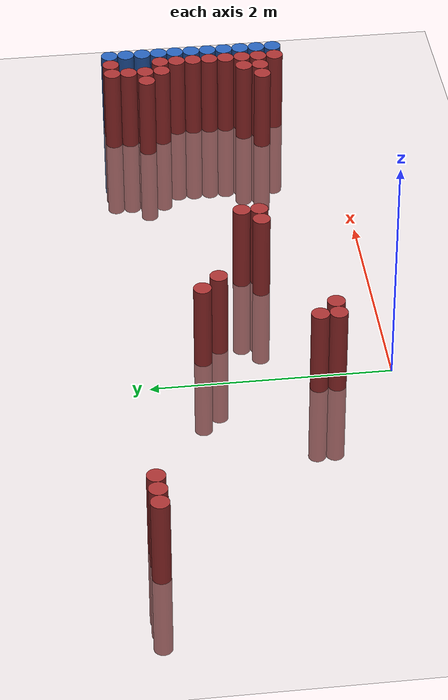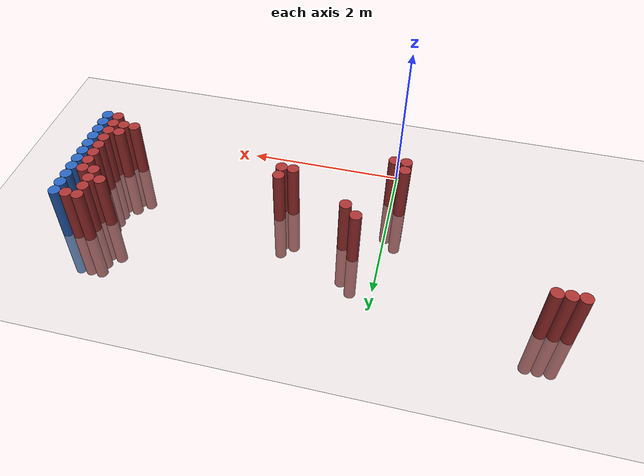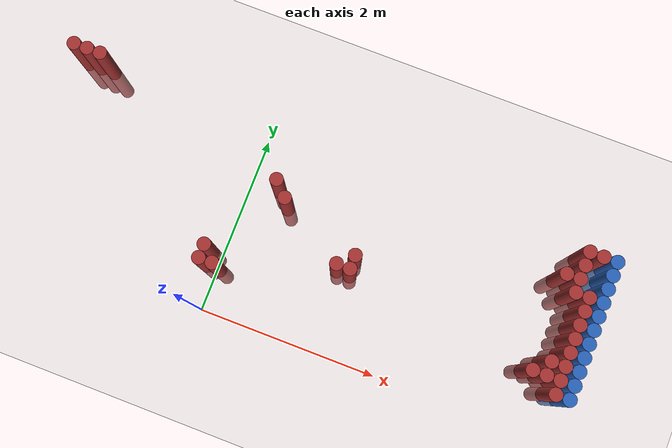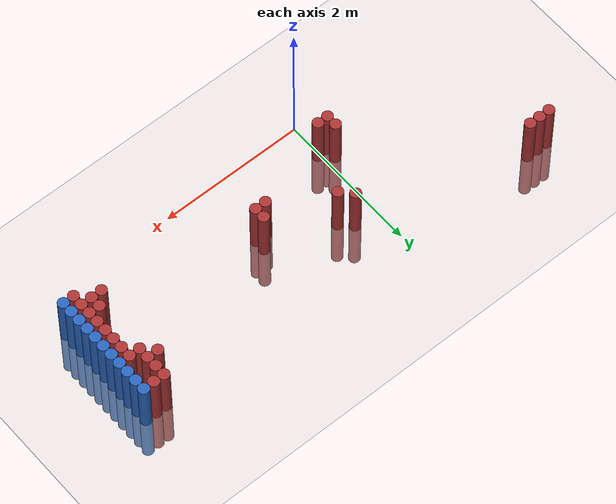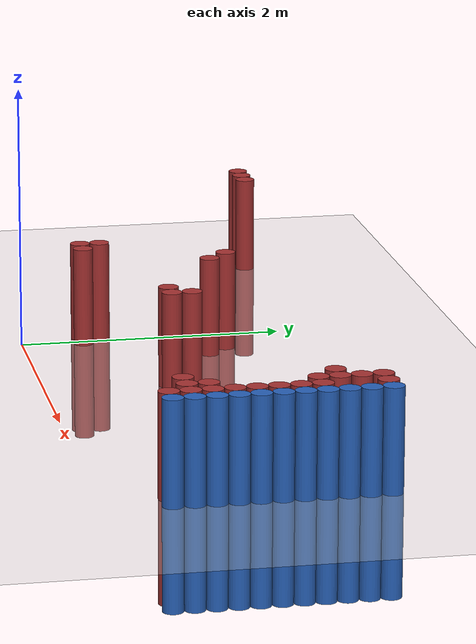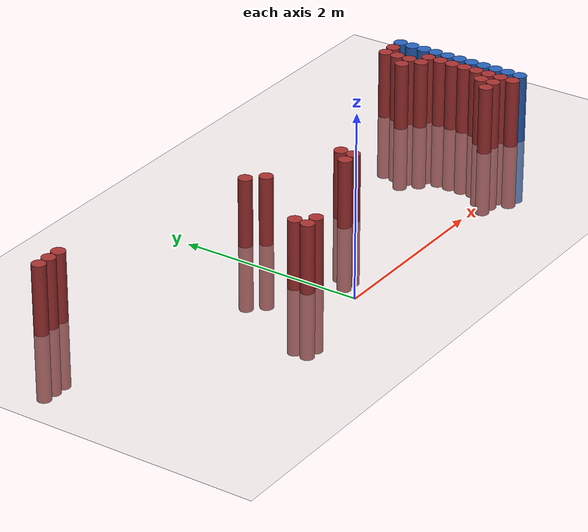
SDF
<sdf version="1.6">
 <world name="default">
  <model name="ground_plane">
   <static>1</static>
   <link name="link">
    <collision name="collision">
     <geometry><plane><normal>0 0 1</normal><size>100 100</size></plane></geometry>
     <surface><friction><ode><mu>100</mu><mu2>50</mu2></ode></friction></surface>
    </collision>
    <visual name="visual">
     <cast_shadows>0</cast_shadows>
     <geometry><plane><normal>0 0 1</normal><size>100 100</size></plane></geometry>
     <material>
      <script><uri>file://media/materials/scripts/gazebo.material</uri><name>Gazebo/Grey</name></script>
     </material>
    </visual>
   </link>
  </model>
  <model name="unit_cylinder_120">
   <static>1</static>
   <pose>3.925000 0.475000 0.000000 0.000000 0.000000 0.000000</pose>
   <link name="link">
    <inertial>
     <mass>1</mass>
     <inertia><ixx>0.145833</ixx><ixy>0</ixy><ixz>0</ixz><iyy>0.145833</iyy><iyz>0</iyz><izz>0.125</izz></inertia>
    </inertial>
    <collision name="collision">
     <geometry><cylinder><radius>0.075000</radius><length>1.5</length></cylinder></geometry>
    </collision>
    <visual name="visual">
     <geometry><cylinder><radius>0.075000</radius><length>1.5</length></cylinder></geometry>
     <material>
      <ambient>0.152000 0.379000 0.720000 1</ambient>
      <diffuse>0.152000 0.379000 0.720000 1</diffuse>
     </material>
     <material>
      <script><name>Gazebo/Grey</name><uri>file://media/materials/scripts/gazebo.material</uri></script>
     </material>
    </visual>
   </link>
  </model>
  <model name="unit_cylinder_122">
   <static>1</static>
   <pose>3.925000 0.625000 0.000000 0.000000 0.000000 0.000000</pose>
   <link name="link">
    <inertial>
     <mass>1</mass>
     <inertia><ixx>0.145833</ixx><ixy>0</ixy><ixz>0</ixz><iyy>0.145833</iyy><iyz>0</iyz><izz>0.125</izz></inertia>
    </inertial>
    <collision name="collision">
     <geometry><cylinder><radius>0.075000</radius><length>1.5</length></cylinder></geometry>
    </collision>
    <visual name="visual">
     <geometry><cylinder><radius>0.075000</radius><length>1.5</length></cylinder></geometry>
     <material>
      <ambient>0.152000 0.379000 0.720000 1</ambient>
      <diffuse>0.152000 0.379000 0.720000 1</diffuse>
     </material>
     <material>
      <script><name>Gazebo/Grey</name><uri>file://media/materials/scripts/gazebo.material</uri></script>
     </material>
    </visual>
   </link>
  </model>
  <model name="unit_cylinder_124">
   <static>1</static>
   <pose>3.925000 0.775000 0.000000 0.000000 0.000000 0.000000</pose>
   <link name="link">
    <inertial>
     <mass>1</mass>
     <inertia><ixx>0.145833</ixx><ixy>0</ixy><ixz>0</ixz><iyy>0.145833</iyy><iyz>0</iyz><izz>0.125</izz></inertia>
    </inertial>
    <collision name="collision">
     <geometry><cylinder><radius>0.075000</radius><length>1.5</length></cylinder></geometry>
    </collision>
    <visual name="visual">
     <geometry><cylinder><radius>0.075000</radius><length>1.5</length></cylinder></geometry>
     <material>
      <ambient>0.152000 0.379000 0.720000 1</ambient>
      <diffuse>0.152000 0.379000 0.720000 1</diffuse>
     </material>
     <material>
      <script><name>Gazebo/Grey</name><uri>file://media/materials/scripts/gazebo.material</uri></script>
     </material>
    </visual>
   </link>
  </model>
  <model name="unit_cylinder_126">
   <static>1</static>
   <pose>3.925000 0.925000 0.000000 0.000000 0.000000 0.000000</pose>
   <link name="link">
    <inertial>
     <mass>1</mass>
     <inertia><ixx>0.145833</ixx><ixy>0</ixy><ixz>0</ixz><iyy>0.145833</iyy><iyz>0</iyz><izz>0.125</izz></inertia>
    </inertial>
    <collision name="collision">
     <geometry><cylinder><radius>0.075000</radius><length>1.5</length></cylinder></geometry>
    </collision>
    <visual name="visual">
     <geometry><cylinder><radius>0.075000</radius><length>1.5</length></cylinder></geometry>
     <material>
      <ambient>0.152000 0.379000 0.720000 1</ambient>
      <diffuse>0.152000 0.379000 0.720000 1</diffuse>
     </material>
     <material>
      <script><name>Gazebo/Grey</name><uri>file://media/materials/scripts/gazebo.material</uri></script>
     </material>
    </visual>
   </link>
  </model>
  <model name="unit_cylinder_128">
   <static>1</static>
   <pose>3.925000 1.075000 0.000000 0.000000 0.000000 0.000000</pose>
   <link name="link">
    <inertial>
     <mass>1</mass>
     <inertia><ixx>0.145833</ixx><ixy>0</ixy><ixz>0</ixz><iyy>0.145833</iyy><iyz>0</iyz><izz>0.125</izz></inertia>
    </inertial>
    <collision name="collision">
     <geometry><cylinder><radius>0.075000</radius><length>1.5</length></cylinder></geometry>
    </collision>
    <visual name="visual">
     <geometry><cylinder><radius>0.075000</radius><length>1.5</length></cylinder></geometry>
     <material>
      <ambient>0.152000 0.379000 0.720000 1</ambient>
      <diffuse>0.152000 0.379000 0.720000 1</diffuse>
     </material>
     <material>
      <script><name>Gazebo/Grey</name><uri>file://media/materials/scripts/gazebo.material</uri></script>
     </material>
    </visual>
   </link>
  </model>
  <model name="unit_cylinder_130">
   <static>1</static>
   <pose>3.925000 1.225000 0.000000 0.000000 0.000000 0.000000</pose>
   <link name="link">
    <inertial>
     <mass>1</mass>
     <inertia><ixx>0.145833</ixx><ixy>0</ixy><ixz>0</ixz><iyy>0.145833</iyy><iyz>0</iyz><izz>0.125</izz></inertia>
    </inertial>
    <collision name="collision">
     <geometry><cylinder><radius>0.075000</radius><length>1.5</length></cylinder></geometry>
    </collision>
    <visual name="visual">
     <geometry><cylinder><radius>0.075000</radius><length>1.5</length></cylinder></geometry>
     <material>
      <ambient>0.152000 0.379000 0.720000 1</ambient>
      <diffuse>0.152000 0.379000 0.720000 1</diffuse>
     </material>
     <material>
      <script><name>Gazebo/Grey</name><uri>file://media/materials/scripts/gazebo.material</uri></script>
     </material>
    </visual>
   </link>
  </model>
  <model name="unit_cylinder_132">
   <static>1</static>
   <pose>3.925000 1.375000 0.000000 0.000000 0.000000 0.000000</pose>
   <link name="link">
    <inertial>
     <mass>1</mass>
     <inertia><ixx>0.145833</ixx><ixy>0</ixy><ixz>0</ixz><iyy>0.145833</iyy><iyz>0</iyz><izz>0.125</izz></inertia>
    </inertial>
    <collision name="collision">
     <geometry><cylinder><radius>0.075000</radius><length>1.5</length></cylinder></geometry>
    </collision>
    <visual name="visual">
     <geometry><cylinder><radius>0.075000</radius><length>1.5</length></cylinder></geometry>
     <material>
      <ambient>0.152000 0.379000 0.720000 1</ambient>
      <diffuse>0.152000 0.379000 0.720000 1</diffuse>
     </material>
     <material>
      <script><name>Gazebo/Grey</name><uri>file://media/materials/scripts/gazebo.material</uri></script>
     </material>
    </visual>
   </link>
  </model>
  <model name="unit_cylinder_134">
   <static>1</static>
   <pose>3.925000 1.525000 0.000000 0.000000 0.000000 0.000000</pose>
   <link name="link">
    <inertial>
     <mass>1</mass>
     <inertia><ixx>0.145833</ixx><ixy>0</ixy><ixz>0</ixz><iyy>0.145833</iyy><iyz>0</iyz><izz>0.125</izz></inertia>
    </inertial>
    <collision name="collision">
     <geometry><cylinder><radius>0.075000</radius><length>1.5</length></cylinder></geometry>
    </collision>
    <visual name="visual">
     <geometry><cylinder><radius>0.075000</radius><length>1.5</length></cylinder></geometry>
     <material>
      <ambient>0.152000 0.379000 0.720000 1</ambient>
      <diffuse>0.152000 0.379000 0.720000 1</diffuse>
     </material>
     <material>
      <script><name>Gazebo/Grey</name><uri>file://media/materials/scripts/gazebo.material</uri></script>
     </material>
    </visual>
   </link>
  </model>
  <model name="unit_cylinder_136">
   <static>1</static>
   <pose>3.925000 1.675000 0.000000 0.000000 0.000000 0.000000</pose>
   <link name="link">
    <inertial>
     <mass>1</mass>
     <inertia><ixx>0.145833</ixx><ixy>0</ixy><ixz>0</ixz><iyy>0.145833</iyy><iyz>0</iyz><izz>0.125</izz></inertia>
    </inertial>
    <collision name="collision">
     <geometry><cylinder><radius>0.075000</radius><length>1.5</length></cylinder></geometry>
    </collision>
    <visual name="visual">
     <geometry><cylinder><radius>0.075000</radius><length>1.5</length></cylinder></geometry>
     <material>
      <ambient>0.152000 0.379000 0.720000 1</ambient>
      <diffuse>0.152000 0.379000 0.720000 1</diffuse>
     </material>
     <material>
      <script><name>Gazebo/Grey</name><uri>file://media/materials/scripts/gazebo.material</uri></script>
     </material>
    </visual>
   </link>
  </model>
  <model name="unit_cylinder_138">
   <static>1</static>
   <pose>3.925000 1.825000 0.000000 0.000000 0.000000 0.000000</pose>
   <link name="link">
    <inertial>
     <mass>1</mass>
     <inertia><ixx>0.145833</ixx><ixy>0</ixy><ixz>0</ixz><iyy>0.145833</iyy><iyz>0</iyz><izz>0.125</izz></inertia>
    </inertial>
    <collision name="collision">
     <geometry><cylinder><radius>0.075000</radius><length>1.5</length></cylinder></geometry>
    </collision>
    <visual name="visual">
     <geometry><cylinder><radius>0.075000</radius><length>1.5</length></cylinder></geometry>
     <material>
      <ambient>0.152000 0.379000 0.720000 1</ambient>
      <diffuse>0.152000 0.379000 0.720000 1</diffuse>
     </material>
     <material>
      <script><name>Gazebo/Grey</name><uri>file://media/materials/scripts/gazebo.material</uri></script>
     </material>
    </visual>
   </link>
  </model>
  <model name="unit_cylinder_140">
   <static>1</static>
   <pose>3.925000 1.975000 0.000000 0.000000 0.000000 0.000000</pose>
   <link name="link">
    <inertial>
     <mass>1</mass>
     <inertia><ixx>0.145833</ixx><ixy>0</ixy><ixz>0</ixz><iyy>0.145833</iyy><iyz>0</iyz><izz>0.125</izz></inertia>
    </inertial>
    <collision name="collision">
     <geometry><cylinder><radius>0.075000</radius><length>1.5</length></cylinder></geometry>
    </collision>
    <visual name="visual">
     <geometry><cylinder><radius>0.075000</radius><length>1.5</length></cylinder></geometry>
     <material>
      <ambient>0.152000 0.379000 0.720000 1</ambient>
      <diffuse>0.152000 0.379000 0.720000 1</diffuse>
     </material>
     <material>
      <script><name>Gazebo/Grey</name><uri>file://media/materials/scripts/gazebo.material</uri></script>
     </material>
    </visual>
   </link>
  </model>
  <model name="unit_cylinder_290">
   <static>1</static>
   <pose>-2.225000 2.125000 0.000000 0.000000 0.000000 0.000000</pose>
   <link name="link">
    <inertial>
     <mass>1</mass>
     <inertia><ixx>0.145833</ixx><ixy>0</ixy><ixz>0</ixz><iyy>0.145833</iyy><iyz>0</iyz><izz>0.125</izz></inertia>
    </inertial>
    <collision name="collision">
     <geometry><cylinder><radius>0.075000</radius><length>1.5</length></cylinder></geometry>
    </collision>
    <visual name="visual">
     <geometry><cylinder><radius>0.075000</radius><length>1.5</length></cylinder></geometry>
     <material>
      <ambient>0.648000 0.192000 0.192000 1</ambient>
      <diffuse>0.648000 0.192000 0.192000 1</diffuse>
     </material>
     <material>
      <script><name>Gazebo/Grey</name><uri>file://media/materials/scripts/gazebo.material</uri></script>
     </material>
    </visual>
   </link>
  </model>
  <model name="unit_cylinder_293">
   <static>1</static>
   <pose>-2.075000 2.125000 0.000000 0.000000 0.000000 0.000000</pose>
   <link name="link">
    <inertial>
     <mass>1</mass>
     <inertia><ixx>0.145833</ixx><ixy>0</ixy><ixz>0</ixz><iyy>0.145833</iyy><iyz>0</iyz><izz>0.125</izz></inertia>
    </inertial>
    <collision name="collision">
     <geometry><cylinder><radius>0.075000</radius><length>1.5</length></cylinder></geometry>
    </collision>
    <visual name="visual">
     <geometry><cylinder><radius>0.075000</radius><length>1.5</length></cylinder></geometry>
     <material>
      <ambient>0.648000 0.192000 0.192000 1</ambient>
      <diffuse>0.648000 0.192000 0.192000 1</diffuse>
     </material>
     <material>
      <script><name>Gazebo/Grey</name><uri>file://media/materials/scripts/gazebo.material</uri></script>
     </material>
    </visual>
   </link>
  </model>
  <model name="unit_cylinder_297">
   <static>1</static>
   <pose>-1.925000 2.125000 0.000000 0.000000 0.000000 0.000000</pose>
   <link name="link">
    <inertial>
     <mass>1</mass>
     <inertia><ixx>0.145833</ixx><ixy>0</ixy><ixz>0</ixz><iyy>0.145833</iyy><iyz>0</iyz><izz>0.125</izz></inertia>
    </inertial>
    <collision name="collision">
     <geometry><cylinder><radius>0.075000</radius><length>1.5</length></cylinder></geometry>
    </collision>
    <visual name="visual">
     <geometry><cylinder><radius>0.075000</radius><length>1.5</length></cylinder></geometry>
     <material>
      <ambient>0.648000 0.192000 0.192000 1</ambient>
      <diffuse>0.648000 0.192000 0.192000 1</diffuse>
     </material>
     <material>
      <script><name>Gazebo/Grey</name><uri>file://media/materials/scripts/gazebo.material</uri></script>
     </material>
    </visual>
   </link>
  </model>
  <model name="unit_cylinder_324">
   <static>1</static>
   <pose>-0.125000 0.475000 0.000000 0.000000 0.000000 0.000000</pose>
   <link name="link">
    <inertial>
     <mass>1</mass>
     <inertia><ixx>0.145833</ixx><ixy>0</ixy><ixz>0</ixz><iyy>0.145833</iyy><iyz>0</iyz><izz>0.125</izz></inertia>
    </inertial>
    <collision name="collision">
     <geometry><cylinder><radius>0.075000</radius><length>1.5</length></cylinder></geometry>
    </collision>
    <visual name="visual">
     <geometry><cylinder><radius>0.075000</radius><length>1.5</length></cylinder></geometry>
     <material>
      <ambient>0.648000 0.192000 0.192000 1</ambient>
      <diffuse>0.648000 0.192000 0.192000 1</diffuse>
     </material>
     <material>
      <script><name>Gazebo/Grey</name><uri>file://media/materials/scripts/gazebo.material</uri></script>
     </material>
    </visual>
   </link>
  </model>
  <model name="unit_cylinder_325">
   <static>1</static>
   <pose>-0.125000 0.625000 0.000000 0.000000 0.000000 0.000000</pose>
   <link name="link">
    <inertial>
     <mass>1</mass>
     <inertia><ixx>0.145833</ixx><ixy>0</ixy><ixz>0</ixz><iyy>0.145833</iyy><iyz>0</iyz><izz>0.125</izz></inertia>
    </inertial>
    <collision name="collision">
     <geometry><cylinder><radius>0.075000</radius><length>1.5</length></cylinder></geometry>
    </collision>
    <visual name="visual">
     <geometry><cylinder><radius>0.075000</radius><length>1.5</length></cylinder></geometry>
     <material>
      <ambient>0.648000 0.192000 0.192000 1</ambient>
      <diffuse>0.648000 0.192000 0.192000 1</diffuse>
     </material>
     <material>
      <script><name>Gazebo/Grey</name><uri>file://media/materials/scripts/gazebo.material</uri></script>
     </material>
    </visual>
   </link>
  </model>
  <model name="unit_cylinder_329">
   <static>1</static>
   <pose>0.025000 0.475000 0.000000 0.000000 0.000000 0.000000</pose>
   <link name="link">
    <inertial>
     <mass>1</mass>
     <inertia><ixx>0.145833</ixx><ixy>0</ixy><ixz>0</ixz><iyy>0.145833</iyy><iyz>0</iyz><izz>0.125</izz></inertia>
    </inertial>
    <collision name="collision">
     <geometry><cylinder><radius>0.075000</radius><length>1.5</length></cylinder></geometry>
    </collision>
    <visual name="visual">
     <geometry><cylinder><radius>0.075000</radius><length>1.5</length></cylinder></geometry>
     <material>
      <ambient>0.648000 0.192000 0.192000 1</ambient>
      <diffuse>0.648000 0.192000 0.192000 1</diffuse>
     </material>
     <material>
      <script><name>Gazebo/Grey</name><uri>file://media/materials/scripts/gazebo.material</uri></script>
     </material>
    </visual>
   </link>
  </model>
  <model name="unit_cylinder_336">
   <static>1</static>
   <pose>0.325000 1.525000 0.000000 0.000000 0.000000 0.000000</pose>
   <link name="link">
    <inertial>
     <mass>1</mass>
     <inertia><ixx>0.145833</ixx><ixy>0</ixy><ixz>0</ixz><iyy>0.145833</iyy><iyz>0</iyz><izz>0.125</izz></inertia>
    </inertial>
    <collision name="collision">
     <geometry><cylinder><radius>0.075000</radius><length>1.5</length></cylinder></geometry>
    </collision>
    <visual name="visual">
     <geometry><cylinder><radius>0.075000</radius><length>1.5</length></cylinder></geometry>
     <material>
      <ambient>0.648000 0.192000 0.192000 1</ambient>
      <diffuse>0.648000 0.192000 0.192000 1</diffuse>
     </material>
     <material>
      <script><name>Gazebo/Grey</name><uri>file://media/materials/scripts/gazebo.material</uri></script>
     </material>
    </visual>
   </link>
  </model>
  <model name="unit_cylinder_340">
   <static>1</static>
   <pose>0.475000 1.375000 0.000000 0.000000 0.000000 0.000000</pose>
   <link name="link">
    <inertial>
     <mass>1</mass>
     <inertia><ixx>0.145833</ixx><ixy>0</ixy><ixz>0</ixz><iyy>0.145833</iyy><iyz>0</iyz><izz>0.125</izz></inertia>
    </inertial>
    <collision name="collision">
     <geometry><cylinder><radius>0.075000</radius><length>1.5</length></cylinder></geometry>
    </collision>
    <visual name="visual">
     <geometry><cylinder><radius>0.075000</radius><length>1.5</length></cylinder></geometry>
     <material>
      <ambient>0.648000 0.192000 0.192000 1</ambient>
      <diffuse>0.648000 0.192000 0.192000 1</diffuse>
     </material>
     <material>
      <script><name>Gazebo/Grey</name><uri>file://media/materials/scripts/gazebo.material</uri></script>
     </material>
    </visual>
   </link>
  </model>
  <model name="unit_cylinder_346">
   <static>1</static>
   <pose>1.225000 0.925000 0.000000 0.000000 0.000000 0.000000</pose>
   <link name="link">
    <inertial>
     <mass>1</mass>
     <inertia><ixx>0.145833</ixx><ixy>0</ixy><ixz>0</ixz><iyy>0.145833</iyy><iyz>0</iyz><izz>0.125</izz></inertia>
    </inertial>
    <collision name="collision">
     <geometry><cylinder><radius>0.075000</radius><length>1.5</length></cylinder></geometry>
    </collision>
    <visual name="visual">
     <geometry><cylinder><radius>0.075000</radius><length>1.5</length></cylinder></geometry>
     <material>
      <ambient>0.648000 0.192000 0.192000 1</ambient>
      <diffuse>0.648000 0.192000 0.192000 1</diffuse>
     </material>
     <material>
      <script><name>Gazebo/Grey</name><uri>file://media/materials/scripts/gazebo.material</uri></script>
     </material>
    </visual>
   </link>
  </model>
  <model name="unit_cylinder_347">
   <static>1</static>
   <pose>1.375000 0.925000 0.000000 0.000000 0.000000 0.000000</pose>
   <link name="link">
    <inertial>
     <mass>1</mass>
     <inertia><ixx>0.145833</ixx><ixy>0</ixy><ixz>0</ixz><iyy>0.145833</iyy><iyz>0</iyz><izz>0.125</izz></inertia>
    </inertial>
    <collision name="collision">
     <geometry><cylinder><radius>0.075000</radius><length>1.5</length></cylinder></geometry>
    </collision>
    <visual name="visual">
     <geometry><cylinder><radius>0.075000</radius><length>1.5</length></cylinder></geometry>
     <material>
      <ambient>0.648000 0.192000 0.192000 1</ambient>
      <diffuse>0.648000 0.192000 0.192000 1</diffuse>
     </material>
     <material>
      <script><name>Gazebo/Grey</name><uri>file://media/materials/scripts/gazebo.material</uri></script>
     </material>
    </visual>
   </link>
  </model>
  <model name="unit_cylinder_348">
   <static>1</static>
   <pose>1.375000 1.075000 0.000000 0.000000 0.000000 0.000000</pose>
   <link name="link">
    <inertial>
     <mass>1</mass>
     <inertia><ixx>0.145833</ixx><ixy>0</ixy><ixz>0</ixz><iyy>0.145833</iyy><iyz>0</iyz><izz>0.125</izz></inertia>
    </inertial>
    <collision name="collision">
     <geometry><cylinder><radius>0.075000</radius><length>1.5</length></cylinder></geometry>
    </collision>
    <visual name="visual">
     <geometry><cylinder><radius>0.075000</radius><length>1.5</length></cylinder></geometry>
     <material>
      <ambient>0.648000 0.192000 0.192000 1</ambient>
      <diffuse>0.648000 0.192000 0.192000 1</diffuse>
     </material>
     <material>
      <script><name>Gazebo/Grey</name><uri>file://media/materials/scripts/gazebo.material</uri></script>
     </material>
    </visual>
   </link>
  </model>
  <model name="unit_cylinder_366">
   <static>1</static>
   <pose>3.475000 0.625000 0.000000 0.000000 0.000000 0.000000</pose>
   <link name="link">
    <inertial>
     <mass>1</mass>
     <inertia><ixx>0.145833</ixx><ixy>0</ixy><ixz>0</ixz><iyy>0.145833</iyy><iyz>0</iyz><izz>0.125</izz></inertia>
    </inertial>
    <collision name="collision">
     <geometry><cylinder><radius>0.075000</radius><length>1.5</length></cylinder></geometry>
    </collision>
    <visual name="visual">
     <geometry><cylinder><radius>0.075000</radius><length>1.5</length></cylinder></geometry>
     <material>
      <ambient>0.648000 0.192000 0.192000 1</ambient>
      <diffuse>0.648000 0.192000 0.192000 1</diffuse>
     </material>
     <material>
      <script><name>Gazebo/Grey</name><uri>file://media/materials/scripts/gazebo.material</uri></script>
     </material>
    </visual>
   </link>
  </model>
  <model name="unit_cylinder_367">
   <static>1</static>
   <pose>3.475000 1.675000 0.000000 0.000000 0.000000 0.000000</pose>
   <link name="link">
    <inertial>
     <mass>1</mass>
     <inertia><ixx>0.145833</ixx><ixy>0</ixy><ixz>0</ixz><iyy>0.145833</iyy><iyz>0</iyz><izz>0.125</izz></inertia>
    </inertial>
    <collision name="collision">
     <geometry><cylinder><radius>0.075000</radius><length>1.5</length></cylinder></geometry>
    </collision>
    <visual name="visual">
     <geometry><cylinder><radius>0.075000</radius><length>1.5</length></cylinder></geometry>
     <material>
      <ambient>0.648000 0.192000 0.192000 1</ambient>
      <diffuse>0.648000 0.192000 0.192000 1</diffuse>
     </material>
     <material>
      <script><name>Gazebo/Grey</name><uri>file://media/materials/scripts/gazebo.material</uri></script>
     </material>
    </visual>
   </link>
  </model>
  <model name="unit_cylinder_368">
   <static>1</static>
   <pose>3.625000 0.625000 0.000000 0.000000 0.000000 0.000000</pose>
   <link name="link">
    <inertial>
     <mass>1</mass>
     <inertia><ixx>0.145833</ixx><ixy>0</ixy><ixz>0</ixz><iyy>0.145833</iyy><iyz>0</iyz><izz>0.125</izz></inertia>
    </inertial>
    <collision name="collision">
     <geometry><cylinder><radius>0.075000</radius><length>1.5</length></cylinder></geometry>
    </collision>
    <visual name="visual">
     <geometry><cylinder><radius>0.075000</radius><length>1.5</length></cylinder></geometry>
     <material>
      <ambient>0.648000 0.192000 0.192000 1</ambient>
      <diffuse>0.648000 0.192000 0.192000 1</diffuse>
     </material>
     <material>
      <script><name>Gazebo/Grey</name><uri>file://media/materials/scripts/gazebo.material</uri></script>
     </material>
    </visual>
   </link>
  </model>
  <model name="unit_cylinder_369">
   <static>1</static>
   <pose>3.625000 0.775000 0.000000 0.000000 0.000000 0.000000</pose>
   <link name="link">
    <inertial>
     <mass>1</mass>
     <inertia><ixx>0.145833</ixx><ixy>0</ixy><ixz>0</ixz><iyy>0.145833</iyy><iyz>0</iyz><izz>0.125</izz></inertia>
    </inertial>
    <collision name="collision">
     <geometry><cylinder><radius>0.075000</radius><length>1.5</length></cylinder></geometry>
    </collision>
    <visual name="visual">
     <geometry><cylinder><radius>0.075000</radius><length>1.5</length></cylinder></geometry>
     <material>
      <ambient>0.648000 0.192000 0.192000 1</ambient>
      <diffuse>0.648000 0.192000 0.192000 1</diffuse>
     </material>
     <material>
      <script><name>Gazebo/Grey</name><uri>file://media/materials/scripts/gazebo.material</uri></script>
     </material>
    </visual>
   </link>
  </model>
  <model name="unit_cylinder_370">
   <static>1</static>
   <pose>3.625000 1.525000 0.000000 0.000000 0.000000 0.000000</pose>
   <link name="link">
    <inertial>
     <mass>1</mass>
     <inertia><ixx>0.145833</ixx><ixy>0</ixy><ixz>0</ixz><iyy>0.145833</iyy><iyz>0</iyz><izz>0.125</izz></inertia>
    </inertial>
    <collision name="collision">
     <geometry><cylinder><radius>0.075000</radius><length>1.5</length></cylinder></geometry>
    </collision>
    <visual name="visual">
     <geometry><cylinder><radius>0.075000</radius><length>1.5</length></cylinder></geometry>
     <material>
      <ambient>0.648000 0.192000 0.192000 1</ambient>
      <diffuse>0.648000 0.192000 0.192000 1</diffuse>
     </material>
     <material>
      <script><name>Gazebo/Grey</name><uri>file://media/materials/scripts/gazebo.material</uri></script>
     </material>
    </visual>
   </link>
  </model>
  <model name="unit_cylinder_371">
   <static>1</static>
   <pose>3.625000 1.675000 0.000000 0.000000 0.000000 0.000000</pose>
   <link name="link">
    <inertial>
     <mass>1</mass>
     <inertia><ixx>0.145833</ixx><ixy>0</ixy><ixz>0</ixz><iyy>0.145833</iyy><iyz>0</iyz><izz>0.125</izz></inertia>
    </inertial>
    <collision name="collision">
     <geometry><cylinder><radius>0.075000</radius><length>1.5</length></cylinder></geometry>
    </collision>
    <visual name="visual">
     <geometry><cylinder><radius>0.075000</radius><length>1.5</length></cylinder></geometry>
     <material>
      <ambient>0.648000 0.192000 0.192000 1</ambient>
      <diffuse>0.648000 0.192000 0.192000 1</diffuse>
     </material>
     <material>
      <script><name>Gazebo/Grey</name><uri>file://media/materials/scripts/gazebo.material</uri></script>
     </material>
    </visual>
   </link>
  </model>
  <model name="unit_cylinder_372">
   <static>1</static>
   <pose>3.625000 1.825000 0.000000 0.000000 0.000000 0.000000</pose>
   <link name="link">
    <inertial>
     <mass>1</mass>
     <inertia><ixx>0.145833</ixx><ixy>0</ixy><ixz>0</ixz><iyy>0.145833</iyy><iyz>0</iyz><izz>0.125</izz></inertia>
    </inertial>
    <collision name="collision">
     <geometry><cylinder><radius>0.075000</radius><length>1.5</length></cylinder></geometry>
    </collision>
    <visual name="visual">
     <geometry><cylinder><radius>0.075000</radius><length>1.5</length></cylinder></geometry>
     <material>
      <ambient>0.648000 0.192000 0.192000 1</ambient>
      <diffuse>0.648000 0.192000 0.192000 1</diffuse>
     </material>
     <material>
      <script><name>Gazebo/Grey</name><uri>file://media/materials/scripts/gazebo.material</uri></script>
     </material>
    </visual>
   </link>
  </model>
  <model name="unit_cylinder_373">
   <static>1</static>
   <pose>3.625000 1.975000 0.000000 0.000000 0.000000 0.000000</pose>
   <link name="link">
    <inertial>
     <mass>1</mass>
     <inertia><ixx>0.145833</ixx><ixy>0</ixy><ixz>0</ixz><iyy>0.145833</iyy><iyz>0</iyz><izz>0.125</izz></inertia>
    </inertial>
    <collision name="collision">
     <geometry><cylinder><radius>0.075000</radius><length>1.5</length></cylinder></geometry>
    </collision>
    <visual name="visual">
     <geometry><cylinder><radius>0.075000</radius><length>1.5</length></cylinder></geometry>
     <material>
      <ambient>0.648000 0.192000 0.192000 1</ambient>
      <diffuse>0.648000 0.192000 0.192000 1</diffuse>
     </material>
     <material>
      <script><name>Gazebo/Grey</name><uri>file://media/materials/scripts/gazebo.material</uri></script>
     </material>
    </visual>
   </link>
  </model>
  <model name="unit_cylinder_381">
   <static>1</static>
   <pose>3.775000 0.475000 0.000000 0.000000 0.000000 0.000000</pose>
   <link name="link">
    <inertial>
     <mass>1</mass>
     <inertia><ixx>0.145833</ixx><ixy>0</ixy><ixz>0</ixz><iyy>0.145833</iyy><iyz>0</iyz><izz>0.125</izz></inertia>
    </inertial>
    <collision name="collision">
     <geometry><cylinder><radius>0.075000</radius><length>1.5</length></cylinder></geometry>
    </collision>
    <visual name="visual">
     <geometry><cylinder><radius>0.075000</radius><length>1.5</length></cylinder></geometry>
     <material>
      <ambient>0.648000 0.192000 0.192000 1</ambient>
      <diffuse>0.648000 0.192000 0.192000 1</diffuse>
     </material>
     <material>
      <script><name>Gazebo/Grey</name><uri>file://media/materials/scripts/gazebo.material</uri></script>
     </material>
    </visual>
   </link>
  </model>
  <model name="unit_cylinder_382">
   <static>1</static>
   <pose>3.775000 0.625000 0.000000 0.000000 0.000000 0.000000</pose>
   <link name="link">
    <inertial>
     <mass>1</mass>
     <inertia><ixx>0.145833</ixx><ixy>0</ixy><ixz>0</ixz><iyy>0.145833</iyy><iyz>0</iyz><izz>0.125</izz></inertia>
    </inertial>
    <collision name="collision">
     <geometry><cylinder><radius>0.075000</radius><length>1.5</length></cylinder></geometry>
    </collision>
    <visual name="visual">
     <geometry><cylinder><radius>0.075000</radius><length>1.5</length></cylinder></geometry>
     <material>
      <ambient>0.648000 0.192000 0.192000 1</ambient>
      <diffuse>0.648000 0.192000 0.192000 1</diffuse>
     </material>
     <material>
      <script><name>Gazebo/Grey</name><uri>file://media/materials/scripts/gazebo.material</uri></script>
     </material>
    </visual>
   </link>
  </model>
  <model name="unit_cylinder_383">
   <static>1</static>
   <pose>3.775000 0.775000 0.000000 0.000000 0.000000 0.000000</pose>
   <link name="link">
    <inertial>
     <mass>1</mass>
     <inertia><ixx>0.145833</ixx><ixy>0</ixy><ixz>0</ixz><iyy>0.145833</iyy><iyz>0</iyz><izz>0.125</izz></inertia>
    </inertial>
    <collision name="collision">
     <geometry><cylinder><radius>0.075000</radius><length>1.5</length></cylinder></geometry>
    </collision>
    <visual name="visual">
     <geometry><cylinder><radius>0.075000</radius><length>1.5</length></cylinder></geometry>
     <material>
      <ambient>0.648000 0.192000 0.192000 1</ambient>
      <diffuse>0.648000 0.192000 0.192000 1</diffuse>
     </material>
     <material>
      <script><name>Gazebo/Grey</name><uri>file://media/materials/scripts/gazebo.material</uri></script>
     </material>
    </visual>
   </link>
  </model>
  <model name="unit_cylinder_384">
   <static>1</static>
   <pose>3.775000 0.925000 0.000000 0.000000 0.000000 0.000000</pose>
   <link name="link">
    <inertial>
     <mass>1</mass>
     <inertia><ixx>0.145833</ixx><ixy>0</ixy><ixz>0</ixz><iyy>0.145833</iyy><iyz>0</iyz><izz>0.125</izz></inertia>
    </inertial>
    <collision name="collision">
     <geometry><cylinder><radius>0.075000</radius><length>1.5</length></cylinder></geometry>
    </collision>
    <visual name="visual">
     <geometry><cylinder><radius>0.075000</radius><length>1.5</length></cylinder></geometry>
     <material>
      <ambient>0.648000 0.192000 0.192000 1</ambient>
      <diffuse>0.648000 0.192000 0.192000 1</diffuse>
     </material>
     <material>
      <script><name>Gazebo/Grey</name><uri>file://media/materials/scripts/gazebo.material</uri></script>
     </material>
    </visual>
   </link>
  </model>
  <model name="unit_cylinder_385">
   <static>1</static>
   <pose>3.775000 1.075000 0.000000 0.000000 0.000000 0.000000</pose>
   <link name="link">
    <inertial>
     <mass>1</mass>
     <inertia><ixx>0.145833</ixx><ixy>0</ixy><ixz>0</ixz><iyy>0.145833</iyy><iyz>0</iyz><izz>0.125</izz></inertia>
    </inertial>
    <collision name="collision">
     <geometry><cylinder><radius>0.075000</radius><length>1.5</length></cylinder></geometry>
    </collision>
    <visual name="visual">
     <geometry><cylinder><radius>0.075000</radius><length>1.5</length></cylinder></geometry>
     <material>
      <ambient>0.648000 0.192000 0.192000 1</ambient>
      <diffuse>0.648000 0.192000 0.192000 1</diffuse>
     </material>
     <material>
      <script><name>Gazebo/Grey</name><uri>file://media/materials/scripts/gazebo.material</uri></script>
     </material>
    </visual>
   </link>
  </model>
  <model name="unit_cylinder_386">
   <static>1</static>
   <pose>3.775000 1.225000 0.000000 0.000000 0.000000 0.000000</pose>
   <link name="link">
    <inertial>
     <mass>1</mass>
     <inertia><ixx>0.145833</ixx><ixy>0</ixy><ixz>0</ixz><iyy>0.145833</iyy><iyz>0</iyz><izz>0.125</izz></inertia>
    </inertial>
    <collision name="collision">
     <geometry><cylinder><radius>0.075000</radius><length>1.5</length></cylinder></geometry>
    </collision>
    <visual name="visual">
     <geometry><cylinder><radius>0.075000</radius><length>1.5</length></cylinder></geometry>
     <material>
      <ambient>0.648000 0.192000 0.192000 1</ambient>
      <diffuse>0.648000 0.192000 0.192000 1</diffuse>
     </material>
     <material>
      <script><name>Gazebo/Grey</name><uri>file://media/materials/scripts/gazebo.material</uri></script>
     </material>
    </visual>
   </link>
  </model>
  <model name="unit_cylinder_387">
   <static>1</static>
   <pose>3.775000 1.375000 0.000000 0.000000 0.000000 0.000000</pose>
   <link name="link">
    <inertial>
     <mass>1</mass>
     <inertia><ixx>0.145833</ixx><ixy>0</ixy><ixz>0</ixz><iyy>0.145833</iyy><iyz>0</iyz><izz>0.125</izz></inertia>
    </inertial>
    <collision name="collision">
     <geometry><cylinder><radius>0.075000</radius><length>1.5</length></cylinder></geometry>
    </collision>
    <visual name="visual">
     <geometry><cylinder><radius>0.075000</radius><length>1.5</length></cylinder></geometry>
     <material>
      <ambient>0.648000 0.192000 0.192000 1</ambient>
      <diffuse>0.648000 0.192000 0.192000 1</diffuse>
     </material>
     <material>
      <script><name>Gazebo/Grey</name><uri>file://media/materials/scripts/gazebo.material</uri></script>
     </material>
    </visual>
   </link>
  </model>
  <model name="unit_cylinder_388">
   <static>1</static>
   <pose>3.775000 1.525000 0.000000 0.000000 0.000000 0.000000</pose>
   <link name="link">
    <inertial>
     <mass>1</mass>
     <inertia><ixx>0.145833</ixx><ixy>0</ixy><ixz>0</ixz><iyy>0.145833</iyy><iyz>0</iyz><izz>0.125</izz></inertia>
    </inertial>
    <collision name="collision">
     <geometry><cylinder><radius>0.075000</radius><length>1.5</length></cylinder></geometry>
    </collision>
    <visual name="visual">
     <geometry><cylinder><radius>0.075000</radius><length>1.5</length></cylinder></geometry>
     <material>
      <ambient>0.648000 0.192000 0.192000 1</ambient>
      <diffuse>0.648000 0.192000 0.192000 1</diffuse>
     </material>
     <material>
      <script><name>Gazebo/Grey</name><uri>file://media/materials/scripts/gazebo.material</uri></script>
     </material>
    </visual>
   </link>
  </model>
  <model name="unit_cylinder_389">
   <static>1</static>
   <pose>3.775000 1.975000 0.000000 0.000000 0.000000 0.000000</pose>
   <link name="link">
    <inertial>
     <mass>1</mass>
     <inertia><ixx>0.145833</ixx><ixy>0</ixy><ixz>0</ixz><iyy>0.145833</iyy><iyz>0</iyz><izz>0.125</izz></inertia>
    </inertial>
    <collision name="collision">
     <geometry><cylinder><radius>0.075000</radius><length>1.5</length></cylinder></geometry>
    </collision>
    <visual name="visual">
     <geometry><cylinder><radius>0.075000</radius><length>1.5</length></cylinder></geometry>
     <material>
      <ambient>0.648000 0.192000 0.192000 1</ambient>
      <diffuse>0.648000 0.192000 0.192000 1</diffuse>
     </material>
     <material>
      <script><name>Gazebo/Grey</name><uri>file://media/materials/scripts/gazebo.material</uri></script>
     </material>
    </visual>
   </link>
  </model>
  <model name="unit_cylinder_412">
   <static>1</static>
   <pose>3.925000 0.475000 0.000000 0.000000 0.000000 0.000000</pose>
   <link name="link">
    <inertial>
     <mass>1</mass>
     <inertia><ixx>0.145833</ixx><ixy>0</ixy><ixz>0</ixz><iyy>0.145833</iyy><iyz>0</iyz><izz>0.125</izz></inertia>
    </inertial>
    <collision name="collision">
     <geometry><cylinder><radius>0.075000</radius><length>1.5</length></cylinder></geometry>
    </collision>
    <visual name="visual">
     <geometry><cylinder><radius>0.075000</radius><length>1.5</length></cylinder></geometry>
     <material>
      <ambient>0.152000 0.379000 0.720000 1</ambient>
      <diffuse>0.152000 0.379000 0.720000 1</diffuse>
     </material>
     <material>
      <script><name>Gazebo/Grey</name><uri>file://media/materials/scripts/gazebo.material</uri></script>
     </material>
    </visual>
   </link>
  </model>
  <model name="unit_cylinder_413">
   <static>1</static>
   <pose>3.925000 0.625000 0.000000 0.000000 0.000000 0.000000</pose>
   <link name="link">
    <inertial>
     <mass>1</mass>
     <inertia><ixx>0.145833</ixx><ixy>0</ixy><ixz>0</ixz><iyy>0.145833</iyy><iyz>0</iyz><izz>0.125</izz></inertia>
    </inertial>
    <collision name="collision">
     <geometry><cylinder><radius>0.075000</radius><length>1.5</length></cylinder></geometry>
    </collision>
    <visual name="visual">
     <geometry><cylinder><radius>0.075000</radius><length>1.5</length></cylinder></geometry>
     <material>
      <ambient>0.152000 0.379000 0.720000 1</ambient>
      <diffuse>0.152000 0.379000 0.720000 1</diffuse>
     </material>
     <material>
      <script><name>Gazebo/Grey</name><uri>file://media/materials/scripts/gazebo.material</uri></script>
     </material>
    </visual>
   </link>
  </model>
  <model name="unit_cylinder_414">
   <static>1</static>
   <pose>3.925000 0.775000 0.000000 0.000000 0.000000 0.000000</pose>
   <link name="link">
    <inertial>
     <mass>1</mass>
     <inertia><ixx>0.145833</ixx><ixy>0</ixy><ixz>0</ixz><iyy>0.145833</iyy><iyz>0</iyz><izz>0.125</izz></inertia>
    </inertial>
    <collision name="collision">
     <geometry><cylinder><radius>0.075000</radius><length>1.5</length></cylinder></geometry>
    </collision>
    <visual name="visual">
     <geometry><cylinder><radius>0.075000</radius><length>1.5</length></cylinder></geometry>
     <material>
      <ambient>0.152000 0.379000 0.720000 1</ambient>
      <diffuse>0.152000 0.379000 0.720000 1</diffuse>
     </material>
     <material>
      <script><name>Gazebo/Grey</name><uri>file://media/materials/scripts/gazebo.material</uri></script>
     </material>
    </visual>
   </link>
  </model>
  <model name="unit_cylinder_415">
   <static>1</static>
   <pose>3.925000 0.925000 0.000000 0.000000 0.000000 0.000000</pose>
   <link name="link">
    <inertial>
     <mass>1</mass>
     <inertia><ixx>0.145833</ixx><ixy>0</ixy><ixz>0</ixz><iyy>0.145833</iyy><iyz>0</iyz><izz>0.125</izz></inertia>
    </inertial>
    <collision name="collision">
     <geometry><cylinder><radius>0.075000</radius><length>1.5</length></cylinder></geometry>
    </collision>
    <visual name="visual">
     <geometry><cylinder><radius>0.075000</radius><length>1.5</length></cylinder></geometry>
     <material>
      <ambient>0.152000 0.379000 0.720000 1</ambient>
      <diffuse>0.152000 0.379000 0.720000 1</diffuse>
     </material>
     <material>
      <script><name>Gazebo/Grey</name><uri>file://media/materials/scripts/gazebo.material</uri></script>
     </material>
    </visual>
   </link>
  </model>
  <model name="unit_cylinder_416">
   <static>1</static>
   <pose>3.925000 1.075000 0.000000 0.000000 0.000000 0.000000</pose>
   <link name="link">
    <inertial>
     <mass>1</mass>
     <inertia><ixx>0.145833</ixx><ixy>0</ixy><ixz>0</ixz><iyy>0.145833</iyy><iyz>0</iyz><izz>0.125</izz></inertia>
    </inertial>
    <collision name="collision">
     <geometry><cylinder><radius>0.075000</radius><length>1.5</length></cylinder></geometry>
    </collision>
    <visual name="visual">
     <geometry><cylinder><radius>0.075000</radius><length>1.5</length></cylinder></geometry>
     <material>
      <ambient>0.152000 0.379000 0.720000 1</ambient>
      <diffuse>0.152000 0.379000 0.720000 1</diffuse>
     </material>
     <material>
      <script><name>Gazebo/Grey</name><uri>file://media/materials/scripts/gazebo.material</uri></script>
     </material>
    </visual>
   </link>
  </model>
  <model name="unit_cylinder_417">
   <static>1</static>
   <pose>3.925000 1.225000 0.000000 0.000000 0.000000 0.000000</pose>
   <link name="link">
    <inertial>
     <mass>1</mass>
     <inertia><ixx>0.145833</ixx><ixy>0</ixy><ixz>0</ixz><iyy>0.145833</iyy><iyz>0</iyz><izz>0.125</izz></inertia>
    </inertial>
    <collision name="collision">
     <geometry><cylinder><radius>0.075000</radius><length>1.5</length></cylinder></geometry>
    </collision>
    <visual name="visual">
     <geometry><cylinder><radius>0.075000</radius><length>1.5</length></cylinder></geometry>
     <material>
      <ambient>0.152000 0.379000 0.720000 1</ambient>
      <diffuse>0.152000 0.379000 0.720000 1</diffuse>
     </material>
     <material>
      <script><name>Gazebo/Grey</name><uri>file://media/materials/scripts/gazebo.material</uri></script>
     </material>
    </visual>
   </link>
  </model>
  <model name="unit_cylinder_418">
   <static>1</static>
   <pose>3.925000 1.375000 0.000000 0.000000 0.000000 0.000000</pose>
   <link name="link">
    <inertial>
     <mass>1</mass>
     <inertia><ixx>0.145833</ixx><ixy>0</ixy><ixz>0</ixz><iyy>0.145833</iyy><iyz>0</iyz><izz>0.125</izz></inertia>
    </inertial>
    <collision name="collision">
     <geometry><cylinder><radius>0.075000</radius><length>1.5</length></cylinder></geometry>
    </collision>
    <visual name="visual">
     <geometry><cylinder><radius>0.075000</radius><length>1.5</length></cylinder></geometry>
     <material>
      <ambient>0.152000 0.379000 0.720000 1</ambient>
      <diffuse>0.152000 0.379000 0.720000 1</diffuse>
     </material>
     <material>
      <script><name>Gazebo/Grey</name><uri>file://media/materials/scripts/gazebo.material</uri></script>
     </material>
    </visual>
   </link>
  </model>
  <model name="unit_cylinder_419">
   <static>1</static>
   <pose>3.925000 1.525000 0.000000 0.000000 0.000000 0.000000</pose>
   <link name="link">
    <inertial>
     <mass>1</mass>
     <inertia><ixx>0.145833</ixx><ixy>0</ixy><ixz>0</ixz><iyy>0.145833</iyy><iyz>0</iyz><izz>0.125</izz></inertia>
    </inertial>
    <collision name="collision">
     <geometry><cylinder><radius>0.075000</radius><length>1.5</length></cylinder></geometry>
    </collision>
    <visual name="visual">
     <geometry><cylinder><radius>0.075000</radius><length>1.5</length></cylinder></geometry>
     <material>
      <ambient>0.152000 0.379000 0.720000 1</ambient>
      <diffuse>0.152000 0.379000 0.720000 1</diffuse>
     </material>
     <material>
      <script><name>Gazebo/Grey</name><uri>file://media/materials/scripts/gazebo.material</uri></script>
     </material>
    </visual>
   </link>
  </model>
  <model name="unit_cylinder_420">
   <static>1</static>
   <pose>3.925000 1.675000 0.000000 0.000000 0.000000 0.000000</pose>
   <link name="link">
    <inertial>
     <mass>1</mass>
     <inertia><ixx>0.145833</ixx><ixy>0</ixy><ixz>0</ixz><iyy>0.145833</iyy><iyz>0</iyz><izz>0.125</izz></inertia>
    </inertial>
    <collision name="collision">
     <geometry><cylinder><radius>0.075000</radius><length>1.5</length></cylinder></geometry>
    </collision>
    <visual name="visual">
     <geometry><cylinder><radius>0.075000</radius><length>1.5</length></cylinder></geometry>
     <material>
      <ambient>0.152000 0.379000 0.720000 1</ambient>
      <diffuse>0.152000 0.379000 0.720000 1</diffuse>
     </material>
     <material>
      <script><name>Gazebo/Grey</name><uri>file://media/materials/scripts/gazebo.material</uri></script>
     </material>
    </visual>
   </link>
  </model>
  <model name="unit_cylinder_421">
   <static>1</static>
   <pose>3.925000 1.825000 0.000000 0.000000 0.000000 0.000000</pose>
   <link name="link">
    <inertial>
     <mass>1</mass>
     <inertia><ixx>0.145833</ixx><ixy>0</ixy><ixz>0</ixz><iyy>0.145833</iyy><iyz>0</iyz><izz>0.125</izz></inertia>
    </inertial>
    <collision name="collision">
     <geometry><cylinder><radius>0.075000</radius><length>1.5</length></cylinder></geometry>
    </collision>
    <visual name="visual">
     <geometry><cylinder><radius>0.075000</radius><length>1.5</length></cylinder></geometry>
     <material>
      <ambient>0.152000 0.379000 0.720000 1</ambient>
      <diffuse>0.152000 0.379000 0.720000 1</diffuse>
     </material>
     <material>
      <script><name>Gazebo/Grey</name><uri>file://media/materials/scripts/gazebo.material</uri></script>
     </material>
    </visual>
   </link>
  </model>
  <model name="unit_cylinder_422">
   <static>1</static>
   <pose>3.925000 1.975000 0.000000 0.000000 0.000000 0.000000</pose>
   <link name="link">
    <inertial>
     <mass>1</mass>
     <inertia><ixx>0.145833</ixx><ixy>0</ixy><ixz>0</ixz><iyy>0.145833</iyy><iyz>0</iyz><izz>0.125</izz></inertia>
    </inertial>
    <collision name="collision">
     <geometry><cylinder><radius>0.075000</radius><length>1.5</length></cylinder></geometry>
    </collision>
    <visual name="visual">
     <geometry><cylinder><radius>0.075000</radius><length>1.5</length></cylinder></geometry>
     <material>
      <ambient>0.152000 0.379000 0.720000 1</ambient>
      <diffuse>0.152000 0.379000 0.720000 1</diffuse>
     </material>
     <material>
      <script><name>Gazebo/Grey</name><uri>file://media/materials/scripts/gazebo.material</uri></script>
     </material>
    </visual>
   </link>
  </model>
 </world>
</sdf>
